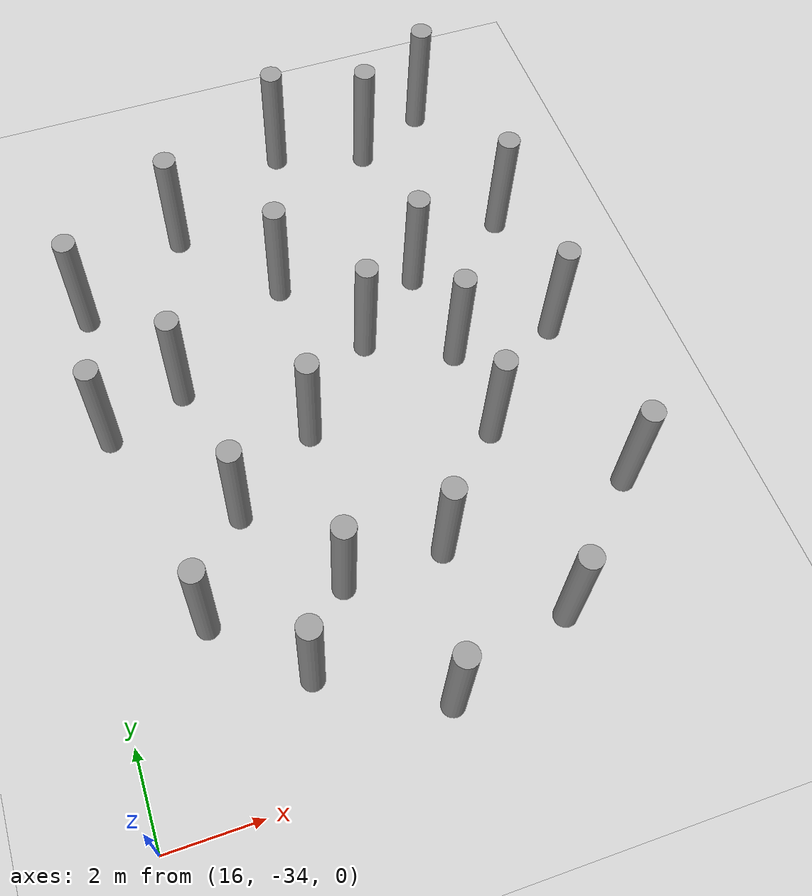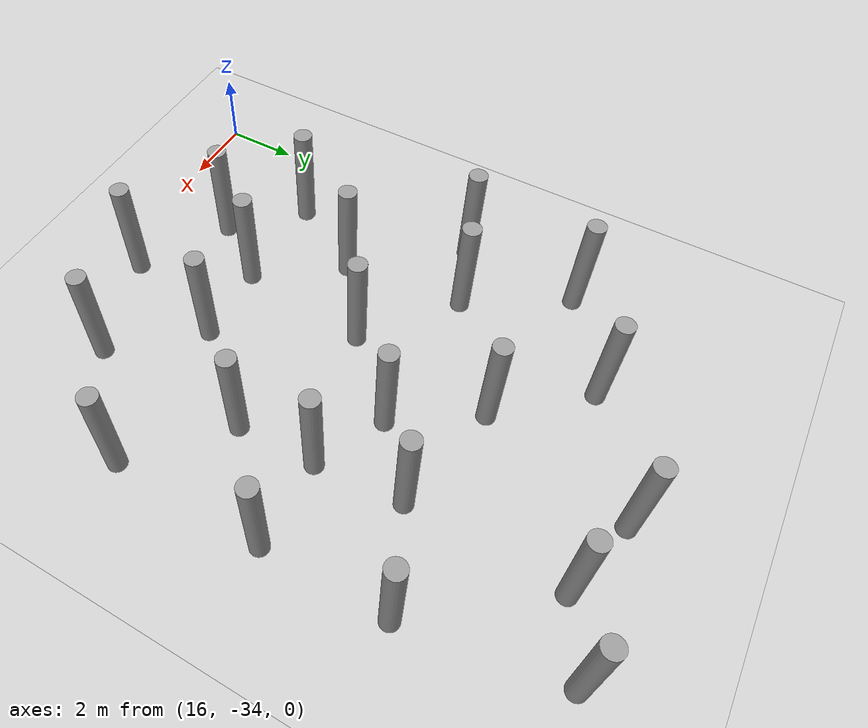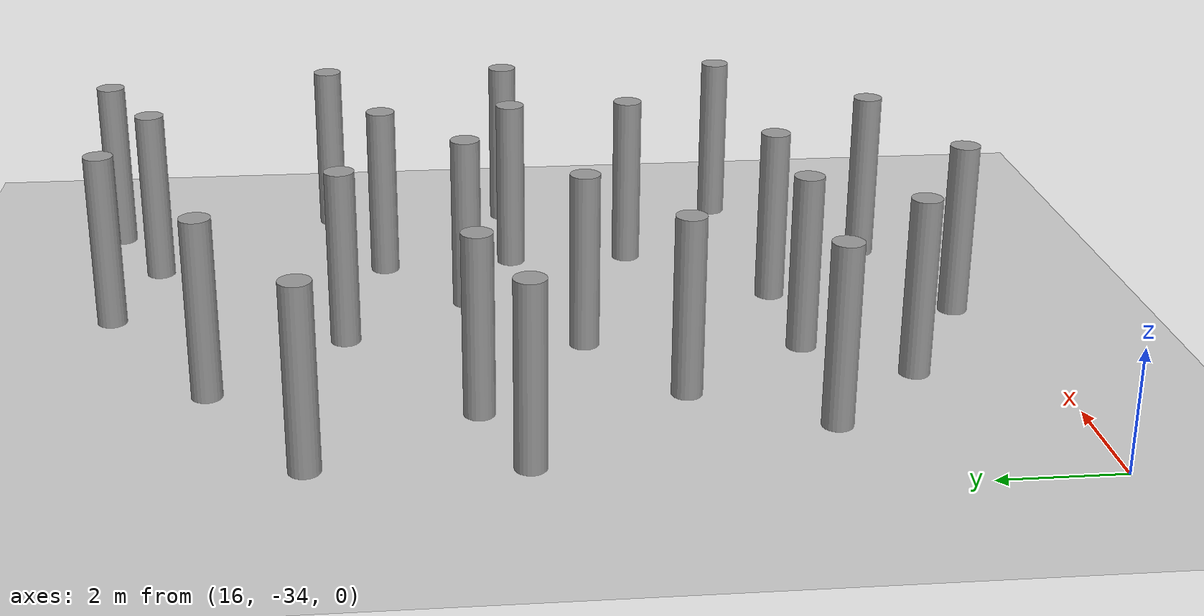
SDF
<sdf version="1.6">
 <world name="default">
  <model name="ground_plane">
   <static>1</static>
   <link name="link">
    <collision name="collision">
     <geometry><plane><normal>0 0 1</normal><size>100 100</size></plane></geometry>
     <surface><friction><ode><mu>100</mu><mu2>50</mu2></ode></friction></surface>
    </collision>
    <visual name="visual">
     <cast_shadows>0</cast_shadows>
     <geometry><plane><normal>0 0 1</normal><size>100 100</size></plane></geometry>
     <material>
      <script><uri>file://media/materials/scripts/gazebo.material</uri><name>Gazebo/Grey</name></script>
     </material>
    </visual>
   </link>
  </model>
  <model name="LjjForest_4">
   <link name="link_0_clone">
    <inertial>
     <mass>1</mass>
     <inertia><ixx>0.145833</ixx><ixy>0</ixy><ixz>0</ixz><iyy>0.145833</iyy><iyz>0</iyz><izz>0.125</izz></inertia>
    </inertial>
    <pose>-2.83119 0.981911 0 0 -0 0</pose>
    <visual name="visual">
     <geometry><cylinder><radius>0.25</radius><length>3</length></cylinder></geometry>
     <material>
      <lighting>1</lighting>
      <script><uri>file://media/materials/scripts/gazebo.material</uri><name>Gazebo/Grey</name></script>
      <shader type="vertex"><normal_map>__default__</normal_map></shader>
      <ambient>0.3 0.3 0.3 1</ambient>
      <diffuse>0.7 0.7 0.7 1</diffuse>
      <specular>0.01 0.01 0.01 1</specular>
      <emissive>0 0 0 1</emissive>
     </material>
    </visual>
    <collision name="collision">
     <geometry><cylinder><radius>0.25</radius><length>3</length></cylinder></geometry>
     <surface>
      <friction>
       <ode><mu>1</mu><mu2>1</mu2><fdir1>0 0 0</fdir1><slip1>0</slip1><slip2>0</slip2></ode>
       <torsional>
        <coefficient>1</coefficient>
        <patch_radius>0</patch_radius>
        <surface_radius>0</surface_radius>
        <use_patch_radius>1</use_patch_radius>
        <ode><slip>0</slip></ode>
       </torsional>
      </friction>
      <bounce><restitution_coefficient>0</restitution_coefficient><threshold>1e+06</threshold></bounce>
      <contact>
       <collide_without_contact>0</collide_without_contact>
       <collide_without_contact_bitmask>1</collide_without_contact_bitmask>
       <collide_bitmask>1</collide_bitmask>
       <ode>
        <soft_cfm>0</soft_cfm>
        <soft_erp>0.2</soft_erp>
        <kp>1e+13</kp>
        <kd>1</kd>
        <max_vel>0.01</max_vel>
        <min_depth>0</min_depth>
       </ode>
       <bullet>
        <split_impulse>1</split_impulse>
        <split_impulse_penetration_threshold>-0.01</split_impulse_penetration_threshold>
        <soft_cfm>0</soft_cfm>
        <soft_erp>0.2</soft_erp>
        <kp>1e+13</kp>
        <kd>1</kd>
       </bullet>
      </contact>
     </surface>
    </collision>
   </link>
   <link name="link_0_clone_0">
    <inertial>
     <mass>1</mass>
     <inertia><ixx>0.145833</ixx><ixy>0</ixy><ixz>0</ixz><iyy>0.145833</iyy><iyz>0</iyz><izz>0.125</izz></inertia>
    </inertial>
    <pose>-0.25253 2.5682 0 0 -0 0</pose>
    <visual name="visual">
     <geometry><cylinder><radius>0.25</radius><length>3</length></cylinder></geometry>
     <material>
      <lighting>1</lighting>
      <script><uri>file://media/materials/scripts/gazebo.material</uri><name>Gazebo/Grey</name></script>
      <shader type="vertex"><normal_map>__default__</normal_map></shader>
      <ambient>0.3 0.3 0.3 1</ambient>
      <diffuse>0.7 0.7 0.7 1</diffuse>
      <specular>0.01 0.01 0.01 1</specular>
      <emissive>0 0 0 1</emissive>
     </material>
    </visual>
    <collision name="collision">
     <geometry><cylinder><radius>0.25</radius><length>3</length></cylinder></geometry>
     <surface>
      <friction>
       <ode><mu>1</mu><mu2>1</mu2><fdir1>0 0 0</fdir1><slip1>0</slip1><slip2>0</slip2></ode>
       <torsional>
        <coefficient>1</coefficient>
        <patch_radius>0</patch_radius>
        <surface_radius>0</surface_radius>
        <use_patch_radius>1</use_patch_radius>
        <ode><slip>0</slip></ode>
       </torsional>
      </friction>
      <bounce><restitution_coefficient>0</restitution_coefficient><threshold>1e+06</threshold></bounce>
      <contact>
       <collide_without_contact>0</collide_without_contact>
       <collide_without_contact_bitmask>1</collide_without_contact_bitmask>
       <collide_bitmask>1</collide_bitmask>
       <ode>
        <soft_cfm>0</soft_cfm>
        <soft_erp>0.2</soft_erp>
        <kp>1e+13</kp>
        <kd>1</kd>
        <max_vel>0.01</max_vel>
        <min_depth>0</min_depth>
       </ode>
       <bullet>
        <split_impulse>1</split_impulse>
        <split_impulse_penetration_threshold>-0.01</split_impulse_penetration_threshold>
        <soft_cfm>0</soft_cfm>
        <soft_erp>0.2</soft_erp>
        <kp>1e+13</kp>
        <kd>1</kd>
       </bullet>
      </contact>
     </surface>
    </collision>
   </link>
   <link name="link_0_clone_1">
    <inertial>
     <mass>1</mass>
     <inertia><ixx>0.145833</ixx><ixy>0</ixy><ixz>0</ixz><iyy>0.145833</iyy><iyz>0</iyz><izz>0.125</izz></inertia>
    </inertial>
    <pose>-1.2394 -1.64814 0 0 -0 0</pose>
    <visual name="visual">
     <geometry><cylinder><radius>0.25</radius><length>3</length></cylinder></geometry>
     <material>
      <lighting>1</lighting>
      <script><uri>file://media/materials/scripts/gazebo.material</uri><name>Gazebo/Grey</name></script>
      <shader type="vertex"><normal_map>__default__</normal_map></shader>
      <ambient>0.3 0.3 0.3 1</ambient>
      <diffuse>0.7 0.7 0.7 1</diffuse>
      <specular>0.01 0.01 0.01 1</specular>
      <emissive>0 0 0 1</emissive>
     </material>
    </visual>
    <collision name="collision">
     <geometry><cylinder><radius>0.25</radius><length>3</length></cylinder></geometry>
     <surface>
      <friction>
       <ode><mu>1</mu><mu2>1</mu2><fdir1>0 0 0</fdir1><slip1>0</slip1><slip2>0</slip2></ode>
       <torsional>
        <coefficient>1</coefficient>
        <patch_radius>0</patch_radius>
        <surface_radius>0</surface_radius>
        <use_patch_radius>1</use_patch_radius>
        <ode><slip>0</slip></ode>
       </torsional>
      </friction>
      <bounce><restitution_coefficient>0</restitution_coefficient><threshold>1e+06</threshold></bounce>
      <contact>
       <collide_without_contact>0</collide_without_contact>
       <collide_without_contact_bitmask>1</collide_without_contact_bitmask>
       <collide_bitmask>1</collide_bitmask>
       <ode>
        <soft_cfm>0</soft_cfm>
        <soft_erp>0.2</soft_erp>
        <kp>1e+13</kp>
        <kd>1</kd>
        <max_vel>0.01</max_vel>
        <min_depth>0</min_depth>
       </ode>
       <bullet>
        <split_impulse>1</split_impulse>
        <split_impulse_penetration_threshold>-0.01</split_impulse_penetration_threshold>
        <soft_cfm>0</soft_cfm>
        <soft_erp>0.2</soft_erp>
        <kp>1e+13</kp>
        <kd>1</kd>
       </bullet>
      </contact>
     </surface>
    </collision>
   </link>
   <link name="link_0_clone_10">
    <inertial>
     <mass>1</mass>
     <inertia><ixx>0.145833</ixx><ixy>0</ixy><ixz>0</ixz><iyy>0.145833</iyy><iyz>0</iyz><izz>0.125</izz></inertia>
    </inertial>
    <pose>4.92442 -4.7051 0 0 -0 0</pose>
    <visual name="visual">
     <geometry><cylinder><radius>0.25</radius><length>3</length></cylinder></geometry>
     <material>
      <lighting>1</lighting>
      <script><uri>file://media/materials/scripts/gazebo.material</uri><name>Gazebo/Grey</name></script>
      <shader type="vertex"><normal_map>__default__</normal_map></shader>
      <ambient>0.3 0.3 0.3 1</ambient>
      <diffuse>0.7 0.7 0.7 1</diffuse>
      <specular>0.01 0.01 0.01 1</specular>
      <emissive>0 0 0 1</emissive>
     </material>
    </visual>
    <collision name="collision">
     <geometry><cylinder><radius>0.25</radius><length>3</length></cylinder></geometry>
     <surface>
      <friction>
       <ode><mu>1</mu><mu2>1</mu2><fdir1>0 0 0</fdir1><slip1>0</slip1><slip2>0</slip2></ode>
       <torsional>
        <coefficient>1</coefficient>
        <patch_radius>0</patch_radius>
        <surface_radius>0</surface_radius>
        <use_patch_radius>1</use_patch_radius>
        <ode><slip>0</slip></ode>
       </torsional>
      </friction>
      <bounce><restitution_coefficient>0</restitution_coefficient><threshold>1e+06</threshold></bounce>
      <contact>
       <collide_without_contact>0</collide_without_contact>
       <collide_without_contact_bitmask>1</collide_without_contact_bitmask>
       <collide_bitmask>1</collide_bitmask>
       <ode>
        <soft_cfm>0</soft_cfm>
        <soft_erp>0.2</soft_erp>
        <kp>1e+13</kp>
        <kd>1</kd>
        <max_vel>0.01</max_vel>
        <min_depth>0</min_depth>
       </ode>
       <bullet>
        <split_impulse>1</split_impulse>
        <split_impulse_penetration_threshold>-0.01</split_impulse_penetration_threshold>
        <soft_cfm>0</soft_cfm>
        <soft_erp>0.2</soft_erp>
        <kp>1e+13</kp>
        <kd>1</kd>
       </bullet>
      </contact>
     </surface>
    </collision>
   </link>
   <link name="link_0_clone_11">
    <inertial>
     <mass>1</mass>
     <inertia><ixx>0.145833</ixx><ixy>0</ixy><ixz>0</ixz><iyy>0.145833</iyy><iyz>0</iyz><izz>0.125</izz></inertia>
    </inertial>
    <pose>2.92414 -7.00263 0 0 -0 0</pose>
    <visual name="visual">
     <geometry><cylinder><radius>0.25</radius><length>3</length></cylinder></geometry>
     <material>
      <lighting>1</lighting>
      <script><uri>file://media/materials/scripts/gazebo.material</uri><name>Gazebo/Grey</name></script>
      <shader type="vertex"><normal_map>__default__</normal_map></shader>
      <ambient>0.3 0.3 0.3 1</ambient>
      <diffuse>0.7 0.7 0.7 1</diffuse>
      <specular>0.01 0.01 0.01 1</specular>
      <emissive>0 0 0 1</emissive>
     </material>
    </visual>
    <collision name="collision">
     <geometry><cylinder><radius>0.25</radius><length>3</length></cylinder></geometry>
     <surface>
      <friction>
       <ode><mu>1</mu><mu2>1</mu2><fdir1>0 0 0</fdir1><slip1>0</slip1><slip2>0</slip2></ode>
       <torsional>
        <coefficient>1</coefficient>
        <patch_radius>0</patch_radius>
        <surface_radius>0</surface_radius>
        <use_patch_radius>1</use_patch_radius>
        <ode><slip>0</slip></ode>
       </torsional>
      </friction>
      <bounce><restitution_coefficient>0</restitution_coefficient><threshold>1e+06</threshold></bounce>
      <contact>
       <collide_without_contact>0</collide_without_contact>
       <collide_without_contact_bitmask>1</collide_without_contact_bitmask>
       <collide_bitmask>1</collide_bitmask>
       <ode>
        <soft_cfm>0</soft_cfm>
        <soft_erp>0.2</soft_erp>
        <kp>1e+13</kp>
        <kd>1</kd>
        <max_vel>0.01</max_vel>
        <min_depth>0</min_depth>
       </ode>
       <bullet>
        <split_impulse>1</split_impulse>
        <split_impulse_penetration_threshold>-0.01</split_impulse_penetration_threshold>
        <soft_cfm>0</soft_cfm>
        <soft_erp>0.2</soft_erp>
        <kp>1e+13</kp>
        <kd>1</kd>
       </bullet>
      </contact>
     </surface>
    </collision>
   </link>
   <link name="link_0_clone_12">
    <inertial>
     <mass>1</mass>
     <inertia><ixx>0.145833</ixx><ixy>0</ixy><ixz>0</ixz><iyy>0.145833</iyy><iyz>0</iyz><izz>0.125</izz></inertia>
    </inertial>
    <pose>4.76112 -9.06376 0 0 -0 0</pose>
    <visual name="visual">
     <geometry><cylinder><radius>0.25</radius><length>3</length></cylinder></geometry>
     <material>
      <lighting>1</lighting>
      <script><uri>file://media/materials/scripts/gazebo.material</uri><name>Gazebo/Grey</name></script>
      <shader type="vertex"><normal_map>__default__</normal_map></shader>
      <ambient>0.3 0.3 0.3 1</ambient>
      <diffuse>0.7 0.7 0.7 1</diffuse>
      <specular>0.01 0.01 0.01 1</specular>
      <emissive>0 0 0 1</emissive>
     </material>
    </visual>
    <collision name="collision">
     <geometry><cylinder><radius>0.25</radius><length>3</length></cylinder></geometry>
     <surface>
      <friction>
       <ode><mu>1</mu><mu2>1</mu2><fdir1>0 0 0</fdir1><slip1>0</slip1><slip2>0</slip2></ode>
       <torsional>
        <coefficient>1</coefficient>
        <patch_radius>0</patch_radius>
        <surface_radius>0</surface_radius>
        <use_patch_radius>1</use_patch_radius>
        <ode><slip>0</slip></ode>
       </torsional>
      </friction>
      <bounce><restitution_coefficient>0</restitution_coefficient><threshold>1e+06</threshold></bounce>
      <contact>
       <collide_without_contact>0</collide_without_contact>
       <collide_without_contact_bitmask>1</collide_without_contact_bitmask>
       <collide_bitmask>1</collide_bitmask>
       <ode>
        <soft_cfm>0</soft_cfm>
        <soft_erp>0.2</soft_erp>
        <kp>1e+13</kp>
        <kd>1</kd>
        <max_vel>0.01</max_vel>
        <min_depth>0</min_depth>
       </ode>
       <bullet>
        <split_impulse>1</split_impulse>
        <split_impulse_penetration_threshold>-0.01</split_impulse_penetration_threshold>
        <soft_cfm>0</soft_cfm>
        <soft_erp>0.2</soft_erp>
        <kp>1e+13</kp>
        <kd>1</kd>
       </bullet>
      </contact>
     </surface>
    </collision>
   </link>
   <link name="link_0_clone_13">
    <inertial>
     <mass>1</mass>
     <inertia><ixx>0.145833</ixx><ixy>0</ixy><ixz>0</ixz><iyy>0.145833</iyy><iyz>0</iyz><izz>0.125</izz></inertia>
    </inertial>
    <pose>0.731055 -7.10049 0 0 -0 0</pose>
    <visual name="visual">
     <geometry><cylinder><radius>0.25</radius><length>3</length></cylinder></geometry>
     <material>
      <lighting>1</lighting>
      <script><uri>file://media/materials/scripts/gazebo.material</uri><name>Gazebo/Grey</name></script>
      <shader type="vertex"><normal_map>__default__</normal_map></shader>
      <ambient>0.3 0.3 0.3 1</ambient>
      <diffuse>0.7 0.7 0.7 1</diffuse>
      <specular>0.01 0.01 0.01 1</specular>
      <emissive>0 0 0 1</emissive>
     </material>
    </visual>
    <collision name="collision">
     <geometry><cylinder><radius>0.25</radius><length>3</length></cylinder></geometry>
     <surface>
      <friction>
       <ode><mu>1</mu><mu2>1</mu2><fdir1>0 0 0</fdir1><slip1>0</slip1><slip2>0</slip2></ode>
       <torsional>
        <coefficient>1</coefficient>
        <patch_radius>0</patch_radius>
        <surface_radius>0</surface_radius>
        <use_patch_radius>1</use_patch_radius>
        <ode><slip>0</slip></ode>
       </torsional>
      </friction>
      <bounce><restitution_coefficient>0</restitution_coefficient><threshold>1e+06</threshold></bounce>
      <contact>
       <collide_without_contact>0</collide_without_contact>
       <collide_without_contact_bitmask>1</collide_without_contact_bitmask>
       <collide_bitmask>1</collide_bitmask>
       <ode>
        <soft_cfm>0</soft_cfm>
        <soft_erp>0.2</soft_erp>
        <kp>1e+13</kp>
        <kd>1</kd>
        <max_vel>0.01</max_vel>
        <min_depth>0</min_depth>
       </ode>
       <bullet>
        <split_impulse>1</split_impulse>
        <split_impulse_penetration_threshold>-0.01</split_impulse_penetration_threshold>
        <soft_cfm>0</soft_cfm>
        <soft_erp>0.2</soft_erp>
        <kp>1e+13</kp>
        <kd>1</kd>
       </bullet>
      </contact>
     </surface>
    </collision>
   </link>
   <link name="link_0_clone_14">
    <inertial>
     <mass>1</mass>
     <inertia><ixx>0.145833</ixx><ixy>0</ixy><ixz>0</ixz><iyy>0.145833</iyy><iyz>0</iyz><izz>0.125</izz></inertia>
    </inertial>
    <pose>-0.840028 -4.93267 0 0 -0 0</pose>
    <visual name="visual">
     <geometry><cylinder><radius>0.25</radius><length>3</length></cylinder></geometry>
     <material>
      <lighting>1</lighting>
      <script><uri>file://media/materials/scripts/gazebo.material</uri><name>Gazebo/Grey</name></script>
      <shader type="vertex"><normal_map>__default__</normal_map></shader>
      <ambient>0.3 0.3 0.3 1</ambient>
      <diffuse>0.7 0.7 0.7 1</diffuse>
      <specular>0.01 0.01 0.01 1</specular>
      <emissive>0 0 0 1</emissive>
     </material>
    </visual>
    <collision name="collision">
     <geometry><cylinder><radius>0.25</radius><length>3</length></cylinder></geometry>
     <surface>
      <friction>
       <ode><mu>1</mu><mu2>1</mu2><fdir1>0 0 0</fdir1><slip1>0</slip1><slip2>0</slip2></ode>
       <torsional>
        <coefficient>1</coefficient>
        <patch_radius>0</patch_radius>
        <surface_radius>0</surface_radius>
        <use_patch_radius>1</use_patch_radius>
        <ode><slip>0</slip></ode>
       </torsional>
      </friction>
      <bounce><restitution_coefficient>0</restitution_coefficient><threshold>1e+06</threshold></bounce>
      <contact>
       <collide_without_contact>0</collide_without_contact>
       <collide_without_contact_bitmask>1</collide_without_contact_bitmask>
       <collide_bitmask>1</collide_bitmask>
       <ode>
        <soft_cfm>0</soft_cfm>
        <soft_erp>0.2</soft_erp>
        <kp>1e+13</kp>
        <kd>1</kd>
        <max_vel>0.01</max_vel>
        <min_depth>0</min_depth>
       </ode>
       <bullet>
        <split_impulse>1</split_impulse>
        <split_impulse_penetration_threshold>-0.01</split_impulse_penetration_threshold>
        <soft_cfm>0</soft_cfm>
        <soft_erp>0.2</soft_erp>
        <kp>1e+13</kp>
        <kd>1</kd>
       </bullet>
      </contact>
     </surface>
    </collision>
   </link>
   <link name="link_0_clone_15">
    <inertial>
     <mass>1</mass>
     <inertia><ixx>0.145833</ixx><ixy>0</ixy><ixz>0</ixz><iyy>0.145833</iyy><iyz>0</iyz><izz>0.125</izz></inertia>
    </inertial>
    <pose>-3.03254 -2.29236 0 0 -0 0</pose>
    <visual name="visual">
     <geometry><cylinder><radius>0.25</radius><length>3</length></cylinder></geometry>
     <material>
      <lighting>1</lighting>
      <script><uri>file://media/materials/scripts/gazebo.material</uri><name>Gazebo/Grey</name></script>
      <shader type="vertex"><normal_map>__default__</normal_map></shader>
      <ambient>0.3 0.3 0.3 1</ambient>
      <diffuse>0.7 0.7 0.7 1</diffuse>
      <specular>0.01 0.01 0.01 1</specular>
      <emissive>0 0 0 1</emissive>
     </material>
    </visual>
    <collision name="collision">
     <geometry><cylinder><radius>0.25</radius><length>3</length></cylinder></geometry>
     <surface>
      <friction>
       <ode><mu>1</mu><mu2>1</mu2><fdir1>0 0 0</fdir1><slip1>0</slip1><slip2>0</slip2></ode>
       <torsional>
        <coefficient>1</coefficient>
        <patch_radius>0</patch_radius>
        <surface_radius>0</surface_radius>
        <use_patch_radius>1</use_patch_radius>
        <ode><slip>0</slip></ode>
       </torsional>
      </friction>
      <bounce><restitution_coefficient>0</restitution_coefficient><threshold>1e+06</threshold></bounce>
      <contact>
       <collide_without_contact>0</collide_without_contact>
       <collide_without_contact_bitmask>1</collide_without_contact_bitmask>
       <collide_bitmask>1</collide_bitmask>
       <ode>
        <soft_cfm>0</soft_cfm>
        <soft_erp>0.2</soft_erp>
        <kp>1e+13</kp>
        <kd>1</kd>
        <max_vel>0.01</max_vel>
        <min_depth>0</min_depth>
       </ode>
       <bullet>
        <split_impulse>1</split_impulse>
        <split_impulse_penetration_threshold>-0.01</split_impulse_penetration_threshold>
        <soft_cfm>0</soft_cfm>
        <soft_erp>0.2</soft_erp>
        <kp>1e+13</kp>
        <kd>1</kd>
       </bullet>
      </contact>
     </surface>
    </collision>
   </link>
   <link name="link_0_clone_18">
    <inertial>
     <mass>1</mass>
     <inertia><ixx>0.145833</ixx><ixy>0</ixy><ixz>0</ixz><iyy>0.145833</iyy><iyz>0</iyz><izz>0.125</izz></inertia>
    </inertial>
    <pose>-2.11118 -7.04502 0 0 -0 0</pose>
    <visual name="visual">
     <geometry><cylinder><radius>0.25</radius><length>3</length></cylinder></geometry>
     <material>
      <lighting>1</lighting>
      <script><uri>file://media/materials/scripts/gazebo.material</uri><name>Gazebo/Grey</name></script>
      <shader type="vertex"><normal_map>__default__</normal_map></shader>
      <ambient>0.3 0.3 0.3 1</ambient>
      <diffuse>0.7 0.7 0.7 1</diffuse>
      <specular>0.01 0.01 0.01 1</specular>
      <emissive>0 0 0 1</emissive>
     </material>
    </visual>
    <collision name="collision">
     <geometry><cylinder><radius>0.25</radius><length>3</length></cylinder></geometry>
     <surface>
      <friction>
       <ode><mu>1</mu><mu2>1</mu2><fdir1>0 0 0</fdir1><slip1>0</slip1><slip2>0</slip2></ode>
       <torsional>
        <coefficient>1</coefficient>
        <patch_radius>0</patch_radius>
        <surface_radius>0</surface_radius>
        <use_patch_radius>1</use_patch_radius>
        <ode><slip>0</slip></ode>
       </torsional>
      </friction>
      <bounce><restitution_coefficient>0</restitution_coefficient><threshold>1e+06</threshold></bounce>
      <contact>
       <collide_without_contact>0</collide_without_contact>
       <collide_without_contact_bitmask>1</collide_without_contact_bitmask>
       <collide_bitmask>1</collide_bitmask>
       <ode>
        <soft_cfm>0</soft_cfm>
        <soft_erp>0.2</soft_erp>
        <kp>1e+13</kp>
        <kd>1</kd>
        <max_vel>0.01</max_vel>
        <min_depth>0</min_depth>
       </ode>
       <bullet>
        <split_impulse>1</split_impulse>
        <split_impulse_penetration_threshold>-0.01</split_impulse_penetration_threshold>
        <soft_cfm>0</soft_cfm>
        <soft_erp>0.2</soft_erp>
        <kp>1e+13</kp>
        <kd>1</kd>
       </bullet>
      </contact>
     </surface>
    </collision>
   </link>
   <link name="link_0_clone_19">
    <inertial>
     <mass>1</mass>
     <inertia><ixx>0.145833</ixx><ixy>0</ixy><ixz>0</ixz><iyy>0.145833</iyy><iyz>0</iyz><izz>0.125</izz></inertia>
    </inertial>
    <pose>-0.4391 -8.69513 0 0 -0 0</pose>
    <visual name="visual">
     <geometry><cylinder><radius>0.25</radius><length>3</length></cylinder></geometry>
     <material>
      <lighting>1</lighting>
      <script><uri>file://media/materials/scripts/gazebo.material</uri><name>Gazebo/Grey</name></script>
      <shader type="vertex"><normal_map>__default__</normal_map></shader>
      <ambient>0.3 0.3 0.3 1</ambient>
      <diffuse>0.7 0.7 0.7 1</diffuse>
      <specular>0.01 0.01 0.01 1</specular>
      <emissive>0 0 0 1</emissive>
     </material>
    </visual>
    <collision name="collision">
     <geometry><cylinder><radius>0.25</radius><length>3</length></cylinder></geometry>
     <surface>
      <friction>
       <ode><mu>1</mu><mu2>1</mu2><fdir1>0 0 0</fdir1><slip1>0</slip1><slip2>0</slip2></ode>
       <torsional>
        <coefficient>1</coefficient>
        <patch_radius>0</patch_radius>
        <surface_radius>0</surface_radius>
        <use_patch_radius>1</use_patch_radius>
        <ode><slip>0</slip></ode>
       </torsional>
      </friction>
      <bounce><restitution_coefficient>0</restitution_coefficient><threshold>1e+06</threshold></bounce>
      <contact>
       <collide_without_contact>0</collide_without_contact>
       <collide_without_contact_bitmask>1</collide_without_contact_bitmask>
       <collide_bitmask>1</collide_bitmask>
       <ode>
        <soft_cfm>0</soft_cfm>
        <soft_erp>0.2</soft_erp>
        <kp>1e+13</kp>
        <kd>1</kd>
        <max_vel>0.01</max_vel>
        <min_depth>0</min_depth>
       </ode>
       <bullet>
        <split_impulse>1</split_impulse>
        <split_impulse_penetration_threshold>-0.01</split_impulse_penetration_threshold>
        <soft_cfm>0</soft_cfm>
        <soft_erp>0.2</soft_erp>
        <kp>1e+13</kp>
        <kd>1</kd>
       </bullet>
      </contact>
     </surface>
    </collision>
   </link>
   <link name="link_0_clone_2">
    <inertial>
     <mass>1</mass>
     <inertia><ixx>0.145833</ixx><ixy>0</ixy><ixz>0</ixz><iyy>0.145833</iyy><iyz>0</iyz><izz>0.125</izz></inertia>
    </inertial>
    <pose>1.64727 0.418921 0 0 -0 0</pose>
    <visual name="visual">
     <geometry><cylinder><radius>0.25</radius><length>3</length></cylinder></geometry>
     <material>
      <lighting>1</lighting>
      <script><uri>file://media/materials/scripts/gazebo.material</uri><name>Gazebo/Grey</name></script>
      <shader type="vertex"><normal_map>__default__</normal_map></shader>
      <ambient>0.3 0.3 0.3 1</ambient>
      <diffuse>0.7 0.7 0.7 1</diffuse>
      <specular>0.01 0.01 0.01 1</specular>
      <emissive>0 0 0 1</emissive>
     </material>
    </visual>
    <collision name="collision">
     <geometry><cylinder><radius>0.25</radius><length>3</length></cylinder></geometry>
     <surface>
      <friction>
       <ode><mu>1</mu><mu2>1</mu2><fdir1>0 0 0</fdir1><slip1>0</slip1><slip2>0</slip2></ode>
       <torsional>
        <coefficient>1</coefficient>
        <patch_radius>0</patch_radius>
        <surface_radius>0</surface_radius>
        <use_patch_radius>1</use_patch_radius>
        <ode><slip>0</slip></ode>
       </torsional>
      </friction>
      <bounce><restitution_coefficient>0</restitution_coefficient><threshold>1e+06</threshold></bounce>
      <contact>
       <collide_without_contact>0</collide_without_contact>
       <collide_without_contact_bitmask>1</collide_without_contact_bitmask>
       <collide_bitmask>1</collide_bitmask>
       <ode>
        <soft_cfm>0</soft_cfm>
        <soft_erp>0.2</soft_erp>
        <kp>1e+13</kp>
        <kd>1</kd>
        <max_vel>0.01</max_vel>
        <min_depth>0</min_depth>
       </ode>
       <bullet>
        <split_impulse>1</split_impulse>
        <split_impulse_penetration_threshold>-0.01</split_impulse_penetration_threshold>
        <soft_cfm>0</soft_cfm>
        <soft_erp>0.2</soft_erp>
        <kp>1e+13</kp>
        <kd>1</kd>
       </bullet>
      </contact>
     </surface>
    </collision>
   </link>
   <link name="link_0_clone_20">
    <inertial>
     <mass>1</mass>
     <inertia><ixx>0.145833</ixx><ixy>0</ixy><ixz>0</ixz><iyy>0.145833</iyy><iyz>0</iyz><izz>0.125</izz></inertia>
    </inertial>
    <pose>1.97365 -10.0303 0 0 -0 0</pose>
    <visual name="visual">
     <geometry><cylinder><radius>0.25</radius><length>3</length></cylinder></geometry>
     <material>
      <lighting>1</lighting>
      <script><uri>file://media/materials/scripts/gazebo.material</uri><name>Gazebo/Grey</name></script>
      <shader type="vertex"><normal_map>__default__</normal_map></shader>
      <ambient>0.3 0.3 0.3 1</ambient>
      <diffuse>0.7 0.7 0.7 1</diffuse>
      <specular>0.01 0.01 0.01 1</specular>
      <emissive>0 0 0 1</emissive>
     </material>
    </visual>
    <collision name="collision">
     <geometry><cylinder><radius>0.25</radius><length>3</length></cylinder></geometry>
     <surface>
      <friction>
       <ode><mu>1</mu><mu2>1</mu2><fdir1>0 0 0</fdir1><slip1>0</slip1><slip2>0</slip2></ode>
       <torsional>
        <coefficient>1</coefficient>
        <patch_radius>0</patch_radius>
        <surface_radius>0</surface_radius>
        <use_patch_radius>1</use_patch_radius>
        <ode><slip>0</slip></ode>
       </torsional>
      </friction>
      <bounce><restitution_coefficient>0</restitution_coefficient><threshold>1e+06</threshold></bounce>
      <contact>
       <collide_without_contact>0</collide_without_contact>
       <collide_without_contact_bitmask>1</collide_without_contact_bitmask>
       <collide_bitmask>1</collide_bitmask>
       <ode>
        <soft_cfm>0</soft_cfm>
        <soft_erp>0.2</soft_erp>
        <kp>1e+13</kp>
        <kd>1</kd>
        <max_vel>0.01</max_vel>
        <min_depth>0</min_depth>
       </ode>
       <bullet>
        <split_impulse>1</split_impulse>
        <split_impulse_penetration_threshold>-0.01</split_impulse_penetration_threshold>
        <soft_cfm>0</soft_cfm>
        <soft_erp>0.2</soft_erp>
        <kp>1e+13</kp>
        <kd>1</kd>
       </bullet>
      </contact>
     </surface>
    </collision>
   </link>
   <link name="link_0_clone_3">
    <inertial>
     <mass>1</mass>
     <inertia><ixx>0.145833</ixx><ixy>0</ixy><ixz>0</ixz><iyy>0.145833</iyy><iyz>0</iyz><izz>0.125</izz></inertia>
    </inertial>
    <pose>2.76214 4.38882 0 0 -0 0</pose>
    <visual name="visual">
     <geometry><cylinder><radius>0.25</radius><length>3</length></cylinder></geometry>
     <material>
      <lighting>1</lighting>
      <script><uri>file://media/materials/scripts/gazebo.material</uri><name>Gazebo/Grey</name></script>
      <shader type="vertex"><normal_map>__default__</normal_map></shader>
      <ambient>0.3 0.3 0.3 1</ambient>
      <diffuse>0.7 0.7 0.7 1</diffuse>
      <specular>0.01 0.01 0.01 1</specular>
      <emissive>0 0 0 1</emissive>
     </material>
    </visual>
    <collision name="collision">
     <geometry><cylinder><radius>0.25</radius><length>3</length></cylinder></geometry>
     <surface>
      <friction>
       <ode><mu>1</mu><mu2>1</mu2><fdir1>0 0 0</fdir1><slip1>0</slip1><slip2>0</slip2></ode>
       <torsional>
        <coefficient>1</coefficient>
        <patch_radius>0</patch_radius>
        <surface_radius>0</surface_radius>
        <use_patch_radius>1</use_patch_radius>
        <ode><slip>0</slip></ode>
       </torsional>
      </friction>
      <bounce><restitution_coefficient>0</restitution_coefficient><threshold>1e+06</threshold></bounce>
      <contact>
       <collide_without_contact>0</collide_without_contact>
       <collide_without_contact_bitmask>1</collide_without_contact_bitmask>
       <collide_bitmask>1</collide_bitmask>
       <ode>
        <soft_cfm>0</soft_cfm>
        <soft_erp>0.2</soft_erp>
        <kp>1e+13</kp>
        <kd>1</kd>
        <max_vel>0.01</max_vel>
        <min_depth>0</min_depth>
       </ode>
       <bullet>
        <split_impulse>1</split_impulse>
        <split_impulse_penetration_threshold>-0.01</split_impulse_penetration_threshold>
        <soft_cfm>0</soft_cfm>
        <soft_erp>0.2</soft_erp>
        <kp>1e+13</kp>
        <kd>1</kd>
       </bullet>
      </contact>
     </surface>
    </collision>
   </link>
   <link name="link_0_clone_31">
    <inertial>
     <mass>1</mass>
     <inertia><ixx>0.145833</ixx><ixy>0</ixy><ixz>0</ixz><iyy>0.145833</iyy><iyz>0</iyz><izz>0.125</izz></inertia>
    </inertial>
    <pose>4.87388 3.77106 0 0 -0 0</pose>
    <visual name="visual">
     <geometry><cylinder><radius>0.25</radius><length>3</length></cylinder></geometry>
     <material>
      <lighting>1</lighting>
      <script><uri>file://media/materials/scripts/gazebo.material</uri><name>Gazebo/Grey</name></script>
      <shader type="vertex"><normal_map>__default__</normal_map></shader>
      <ambient>0.3 0.3 0.3 1</ambient>
      <diffuse>0.7 0.7 0.7 1</diffuse>
      <specular>0.01 0.01 0.01 1</specular>
      <emissive>0 0 0 1</emissive>
     </material>
    </visual>
    <collision name="collision">
     <geometry><cylinder><radius>0.25</radius><length>3</length></cylinder></geometry>
     <surface>
      <friction>
       <ode><mu>1</mu><mu2>1</mu2><fdir1>0 0 0</fdir1><slip1>0</slip1><slip2>0</slip2></ode>
       <torsional>
        <coefficient>1</coefficient>
        <patch_radius>0</patch_radius>
        <surface_radius>0</surface_radius>
        <use_patch_radius>1</use_patch_radius>
        <ode><slip>0</slip></ode>
       </torsional>
      </friction>
      <bounce><restitution_coefficient>0</restitution_coefficient><threshold>1e+06</threshold></bounce>
      <contact>
       <collide_without_contact>0</collide_without_contact>
       <collide_without_contact_bitmask>1</collide_without_contact_bitmask>
       <collide_bitmask>1</collide_bitmask>
       <ode>
        <soft_cfm>0</soft_cfm>
        <soft_erp>0.2</soft_erp>
        <kp>1e+13</kp>
        <kd>1</kd>
        <max_vel>0.01</max_vel>
        <min_depth>0</min_depth>
       </ode>
       <bullet>
        <split_impulse>1</split_impulse>
        <split_impulse_penetration_threshold>-0.01</split_impulse_penetration_threshold>
        <soft_cfm>0</soft_cfm>
        <soft_erp>0.2</soft_erp>
        <kp>1e+13</kp>
        <kd>1</kd>
       </bullet>
      </contact>
     </surface>
    </collision>
   </link>
   <link name="link_0_clone_32">
    <inertial>
     <mass>1</mass>
     <inertia><ixx>0.145833</ixx><ixy>0</ixy><ixz>0</ixz><iyy>0.145833</iyy><iyz>0</iyz><izz>0.125</izz></inertia>
    </inertial>
    <pose>3.04344 -1.68403 0 0 -0 0</pose>
    <visual name="visual">
     <geometry><cylinder><radius>0.25</radius><length>3</length></cylinder></geometry>
     <material>
      <lighting>1</lighting>
      <script><uri>file://media/materials/scripts/gazebo.material</uri><name>Gazebo/Grey</name></script>
      <shader type="vertex"><normal_map>__default__</normal_map></shader>
      <ambient>0.3 0.3 0.3 1</ambient>
      <diffuse>0.7 0.7 0.7 1</diffuse>
      <specular>0.01 0.01 0.01 1</specular>
      <emissive>0 0 0 1</emissive>
     </material>
    </visual>
    <collision name="collision">
     <geometry><cylinder><radius>0.25</radius><length>3</length></cylinder></geometry>
     <surface>
      <friction>
       <ode><mu>1</mu><mu2>1</mu2><fdir1>0 0 0</fdir1><slip1>0</slip1><slip2>0</slip2></ode>
       <torsional>
        <coefficient>1</coefficient>
        <patch_radius>0</patch_radius>
        <surface_radius>0</surface_radius>
        <use_patch_radius>1</use_patch_radius>
        <ode><slip>0</slip></ode>
       </torsional>
      </friction>
      <bounce><restitution_coefficient>0</restitution_coefficient><threshold>1e+06</threshold></bounce>
      <contact>
       <collide_without_contact>0</collide_without_contact>
       <collide_without_contact_bitmask>1</collide_without_contact_bitmask>
       <collide_bitmask>1</collide_bitmask>
       <ode>
        <soft_cfm>0</soft_cfm>
        <soft_erp>0.2</soft_erp>
        <kp>1e+13</kp>
        <kd>1</kd>
        <max_vel>0.01</max_vel>
        <min_depth>0</min_depth>
       </ode>
       <bullet>
        <split_impulse>1</split_impulse>
        <split_impulse_penetration_threshold>-0.01</split_impulse_penetration_threshold>
        <soft_cfm>0</soft_cfm>
        <soft_erp>0.2</soft_erp>
        <kp>1e+13</kp>
        <kd>1</kd>
       </bullet>
      </contact>
     </surface>
    </collision>
   </link>
   <link name="link_0_clone_7">
    <inertial>
     <mass>1</mass>
     <inertia><ixx>0.145833</ixx><ixy>0</ixy><ixz>0</ixz><iyy>0.145833</iyy><iyz>0</iyz><izz>0.125</izz></inertia>
    </inertial>
    <pose>1.14853 -3.52752 0 0 -0 0</pose>
    <visual name="visual">
     <geometry><cylinder><radius>0.25</radius><length>3</length></cylinder></geometry>
     <material>
      <lighting>1</lighting>
      <script><uri>file://media/materials/scripts/gazebo.material</uri><name>Gazebo/Grey</name></script>
      <shader type="vertex"><normal_map>__default__</normal_map></shader>
      <ambient>0.3 0.3 0.3 1</ambient>
      <diffuse>0.7 0.7 0.7 1</diffuse>
      <specular>0.01 0.01 0.01 1</specular>
      <emissive>0 0 0 1</emissive>
     </material>
    </visual>
    <collision name="collision">
     <geometry><cylinder><radius>0.25</radius><length>3</length></cylinder></geometry>
     <surface>
      <friction>
       <ode><mu>1</mu><mu2>1</mu2><fdir1>0 0 0</fdir1><slip1>0</slip1><slip2>0</slip2></ode>
       <torsional>
        <coefficient>1</coefficient>
        <patch_radius>0</patch_radius>
        <surface_radius>0</surface_radius>
        <use_patch_radius>1</use_patch_radius>
        <ode><slip>0</slip></ode>
       </torsional>
      </friction>
      <bounce><restitution_coefficient>0</restitution_coefficient><threshold>1e+06</threshold></bounce>
      <contact>
       <collide_without_contact>0</collide_without_contact>
       <collide_without_contact_bitmask>1</collide_without_contact_bitmask>
       <collide_bitmask>1</collide_bitmask>
       <ode>
        <soft_cfm>0</soft_cfm>
        <soft_erp>0.2</soft_erp>
        <kp>1e+13</kp>
        <kd>1</kd>
        <max_vel>0.01</max_vel>
        <min_depth>0</min_depth>
       </ode>
       <bullet>
        <split_impulse>1</split_impulse>
        <split_impulse_penetration_threshold>-0.01</split_impulse_penetration_threshold>
        <soft_cfm>0</soft_cfm>
        <soft_erp>0.2</soft_erp>
        <kp>1e+13</kp>
        <kd>1</kd>
       </bullet>
      </contact>
     </surface>
    </collision>
   </link>
   <link name="link_0_clone_8">
    <inertial>
     <mass>1</mass>
     <inertia><ixx>0.145833</ixx><ixy>0</ixy><ixz>0</ixz><iyy>0.145833</iyy><iyz>0</iyz><izz>0.125</izz></inertia>
    </inertial>
    <pose>4.72743 -0.273206 0 0 -0 0</pose>
    <visual name="visual">
     <geometry><cylinder><radius>0.25</radius><length>3</length></cylinder></geometry>
     <material>
      <lighting>1</lighting>
      <script><uri>file://media/materials/scripts/gazebo.material</uri><name>Gazebo/Grey</name></script>
      <shader type="vertex"><normal_map>__default__</normal_map></shader>
      <ambient>0.3 0.3 0.3 1</ambient>
      <diffuse>0.7 0.7 0.7 1</diffuse>
      <specular>0.01 0.01 0.01 1</specular>
      <emissive>0 0 0 1</emissive>
     </material>
    </visual>
    <collision name="collision">
     <geometry><cylinder><radius>0.25</radius><length>3</length></cylinder></geometry>
     <surface>
      <friction>
       <ode><mu>1</mu><mu2>1</mu2><fdir1>0 0 0</fdir1><slip1>0</slip1><slip2>0</slip2></ode>
       <torsional>
        <coefficient>1</coefficient>
        <patch_radius>0</patch_radius>
        <surface_radius>0</surface_radius>
        <use_patch_radius>1</use_patch_radius>
        <ode><slip>0</slip></ode>
       </torsional>
      </friction>
      <bounce><restitution_coefficient>0</restitution_coefficient><threshold>1e+06</threshold></bounce>
      <contact>
       <collide_without_contact>0</collide_without_contact>
       <collide_without_contact_bitmask>1</collide_without_contact_bitmask>
       <collide_bitmask>1</collide_bitmask>
       <ode>
        <soft_cfm>0</soft_cfm>
        <soft_erp>0.2</soft_erp>
        <kp>1e+13</kp>
        <kd>1</kd>
        <max_vel>0.01</max_vel>
        <min_depth>0</min_depth>
       </ode>
       <bullet>
        <split_impulse>1</split_impulse>
        <split_impulse_penetration_threshold>-0.01</split_impulse_penetration_threshold>
        <soft_cfm>0</soft_cfm>
        <soft_erp>0.2</soft_erp>
        <kp>1e+13</kp>
        <kd>1</kd>
       </bullet>
      </contact>
     </surface>
    </collision>
   </link>
   <link name="link_0_clone_9">
    <inertial>
     <mass>1</mass>
     <inertia><ixx>0.145833</ixx><ixy>0</ixy><ixz>0</ixz><iyy>0.145833</iyy><iyz>0</iyz><izz>0.125</izz></inertia>
    </inertial>
    <pose>4.89769 -2.58143 0 0 -0 0</pose>
    <visual name="visual">
     <geometry><cylinder><radius>0.25</radius><length>3</length></cylinder></geometry>
     <material>
      <lighting>1</lighting>
      <script><uri>file://media/materials/scripts/gazebo.material</uri><name>Gazebo/Grey</name></script>
      <shader type="vertex"><normal_map>__default__</normal_map></shader>
      <ambient>0.3 0.3 0.3 1</ambient>
      <diffuse>0.7 0.7 0.7 1</diffuse>
      <specular>0.01 0.01 0.01 1</specular>
      <emissive>0 0 0 1</emissive>
     </material>
    </visual>
    <collision name="collision">
     <geometry><cylinder><radius>0.25</radius><length>3</length></cylinder></geometry>
     <surface>
      <friction>
       <ode><mu>1</mu><mu2>1</mu2><fdir1>0 0 0</fdir1><slip1>0</slip1><slip2>0</slip2></ode>
       <torsional>
        <coefficient>1</coefficient>
        <patch_radius>0</patch_radius>
        <surface_radius>0</surface_radius>
        <use_patch_radius>1</use_patch_radius>
        <ode><slip>0</slip></ode>
       </torsional>
      </friction>
      <bounce><restitution_coefficient>0</restitution_coefficient><threshold>1e+06</threshold></bounce>
      <contact>
       <collide_without_contact>0</collide_without_contact>
       <collide_without_contact_bitmask>1</collide_without_contact_bitmask>
       <collide_bitmask>1</collide_bitmask>
       <ode>
        <soft_cfm>0</soft_cfm>
        <soft_erp>0.2</soft_erp>
        <kp>1e+13</kp>
        <kd>1</kd>
        <max_vel>0.01</max_vel>
        <min_depth>0</min_depth>
       </ode>
       <bullet>
        <split_impulse>1</split_impulse>
        <split_impulse_penetration_threshold>-0.01</split_impulse_penetration_threshold>
        <soft_cfm>0</soft_cfm>
        <soft_erp>0.2</soft_erp>
        <kp>1e+13</kp>
        <kd>1</kd>
       </bullet>
      </contact>
     </surface>
    </collision>
   </link>
   <static>0</static>
   <pose>20.0127 -23.0998 1.49999 0 -0 0.002232</pose>
  </model>
  <model name="LjjForest_7">
   <link name="link_0">
    <inertial>
     <mass>1</mass>
     <inertia><ixx>0.145833</ixx><ixy>0</ixy><ixz>0</ixz><iyy>0.145833</iyy><iyz>0</iyz><izz>0.125</izz></inertia>
    </inertial>
    <pose>-5.02717 0.116957 0 0 -0 0</pose>
    <visual name="visual">
     <geometry><cylinder><radius>0.25</radius><length>3</length></cylinder></geometry>
     <material>
      <lighting>1</lighting>
      <script><uri>file://media/materials/scripts/gazebo.material</uri><name>Gazebo/Grey</name></script>
      <shader type="vertex"><normal_map>__default__</normal_map></shader>
      <ambient>0.3 0.3 0.3 1</ambient>
      <diffuse>0.7 0.7 0.7 1</diffuse>
      <specular>0.01 0.01 0.01 1</specular>
      <emissive>0 0 0 1</emissive>
     </material>
    </visual>
    <collision name="collision">
     <geometry><cylinder><radius>0.25</radius><length>3</length></cylinder></geometry>
     <surface>
      <friction>
       <ode><mu>1</mu><mu2>1</mu2><fdir1>0 0 0</fdir1><slip1>0</slip1><slip2>0</slip2></ode>
       <torsional>
        <coefficient>1</coefficient>
        <patch_radius>0</patch_radius>
        <surface_radius>0</surface_radius>
        <use_patch_radius>1</use_patch_radius>
        <ode><slip>0</slip></ode>
       </torsional>
      </friction>
      <bounce><restitution_coefficient>0</restitution_coefficient><threshold>1e+06</threshold></bounce>
      <contact>
       <collide_without_contact>0</collide_without_contact>
       <collide_without_contact_bitmask>1</collide_without_contact_bitmask>
       <collide_bitmask>1</collide_bitmask>
       <ode>
        <soft_cfm>0</soft_cfm>
        <soft_erp>0.2</soft_erp>
        <kp>1e+13</kp>
        <kd>1</kd>
        <max_vel>0.01</max_vel>
        <min_depth>0</min_depth>
       </ode>
       <bullet>
        <split_impulse>1</split_impulse>
        <split_impulse_penetration_threshold>-0.01</split_impulse_penetration_threshold>
        <soft_cfm>0</soft_cfm>
        <soft_erp>0.2</soft_erp>
        <kp>1e+13</kp>
        <kd>1</kd>
       </bullet>
      </contact>
     </surface>
    </collision>
   </link>
   <link name="link_0_clone_16">
    <inertial>
     <mass>1</mass>
     <inertia><ixx>0.145833</ixx><ixy>0</ixy><ixz>0</ixz><iyy>0.145833</iyy><iyz>0</iyz><izz>0.125</izz></inertia>
    </inertial>
    <pose>-5.04025 -3.1815 0 0 -0 0</pose>
    <visual name="visual">
     <geometry><cylinder><radius>0.25</radius><length>3</length></cylinder></geometry>
     <material>
      <lighting>1</lighting>
      <script><uri>file://media/materials/scripts/gazebo.material</uri><name>Gazebo/Grey</name></script>
      <shader type="vertex"><normal_map>__default__</normal_map></shader>
      <ambient>0.3 0.3 0.3 1</ambient>
      <diffuse>0.7 0.7 0.7 1</diffuse>
      <specular>0.01 0.01 0.01 1</specular>
      <emissive>0 0 0 1</emissive>
     </material>
    </visual>
    <collision name="collision">
     <geometry><cylinder><radius>0.25</radius><length>3</length></cylinder></geometry>
     <surface>
      <friction>
       <ode><mu>1</mu><mu2>1</mu2><fdir1>0 0 0</fdir1><slip1>0</slip1><slip2>0</slip2></ode>
       <torsional>
        <coefficient>1</coefficient>
        <patch_radius>0</patch_radius>
        <surface_radius>0</surface_radius>
        <use_patch_radius>1</use_patch_radius>
        <ode><slip>0</slip></ode>
       </torsional>
      </friction>
      <bounce><restitution_coefficient>0</restitution_coefficient><threshold>1e+06</threshold></bounce>
      <contact>
       <collide_without_contact>0</collide_without_contact>
       <collide_without_contact_bitmask>1</collide_without_contact_bitmask>
       <collide_bitmask>1</collide_bitmask>
       <ode>
        <soft_cfm>0</soft_cfm>
        <soft_erp>0.2</soft_erp>
        <kp>1e+13</kp>
        <kd>1</kd>
        <max_vel>0.01</max_vel>
        <min_depth>0</min_depth>
       </ode>
       <bullet>
        <split_impulse>1</split_impulse>
        <split_impulse_penetration_threshold>-0.01</split_impulse_penetration_threshold>
        <soft_cfm>0</soft_cfm>
        <soft_erp>0.2</soft_erp>
        <kp>1e+13</kp>
        <kd>1</kd>
       </bullet>
      </contact>
     </surface>
    </collision>
   </link>
   <link name="link_0_clone_22">
    <inertial>
     <mass>1</mass>
     <inertia><ixx>0.145833</ixx><ixy>0</ixy><ixz>0</ixz><iyy>0.145833</iyy><iyz>0</iyz><izz>0.125</izz></inertia>
    </inertial>
    <pose>-5.1094 -7.26741 0 0 -0 0</pose>
    <visual name="visual">
     <geometry><cylinder><radius>0.25</radius><length>3</length></cylinder></geometry>
     <material>
      <lighting>1</lighting>
      <script><uri>file://media/materials/scripts/gazebo.material</uri><name>Gazebo/Grey</name></script>
      <shader type="vertex"><normal_map>__default__</normal_map></shader>
      <ambient>0.3 0.3 0.3 1</ambient>
      <diffuse>0.7 0.7 0.7 1</diffuse>
      <specular>0.01 0.01 0.01 1</specular>
      <emissive>0 0 0 1</emissive>
     </material>
    </visual>
    <collision name="collision">
     <geometry><cylinder><radius>0.25</radius><length>3</length></cylinder></geometry>
     <surface>
      <friction>
       <ode><mu>1</mu><mu2>1</mu2><fdir1>0 0 0</fdir1><slip1>0</slip1><slip2>0</slip2></ode>
       <torsional>
        <coefficient>1</coefficient>
        <patch_radius>0</patch_radius>
        <surface_radius>0</surface_radius>
        <use_patch_radius>1</use_patch_radius>
        <ode><slip>0</slip></ode>
       </torsional>
      </friction>
      <bounce><restitution_coefficient>0</restitution_coefficient><threshold>1e+06</threshold></bounce>
      <contact>
       <collide_without_contact>0</collide_without_contact>
       <collide_without_contact_bitmask>1</collide_without_contact_bitmask>
       <collide_bitmask>1</collide_bitmask>
       <ode>
        <soft_cfm>0</soft_cfm>
        <soft_erp>0.2</soft_erp>
        <kp>1e+13</kp>
        <kd>1</kd>
        <max_vel>0.01</max_vel>
        <min_depth>0</min_depth>
       </ode>
       <bullet>
        <split_impulse>1</split_impulse>
        <split_impulse_penetration_threshold>-0.01</split_impulse_penetration_threshold>
        <soft_cfm>0</soft_cfm>
        <soft_erp>0.2</soft_erp>
        <kp>1e+13</kp>
        <kd>1</kd>
       </bullet>
      </contact>
     </surface>
    </collision>
   </link>
   <link name="link_0_clone_23">
    <inertial>
     <mass>1</mass>
     <inertia><ixx>0.145833</ixx><ixy>0</ixy><ixz>0</ixz><iyy>0.145833</iyy><iyz>0</iyz><izz>0.125</izz></inertia>
    </inertial>
    <pose>-5.66615 4.05911 0 0 -0 0</pose>
    <visual name="visual">
     <geometry><cylinder><radius>0.25</radius><length>3</length></cylinder></geometry>
     <material>
      <lighting>1</lighting>
      <script><uri>file://media/materials/scripts/gazebo.material</uri><name>Gazebo/Grey</name></script>
      <shader type="vertex"><normal_map>__default__</normal_map></shader>
      <ambient>0.3 0.3 0.3 1</ambient>
      <diffuse>0.7 0.7 0.7 1</diffuse>
      <specular>0.01 0.01 0.01 1</specular>
      <emissive>0 0 0 1</emissive>
     </material>
    </visual>
    <collision name="collision">
     <geometry><cylinder><radius>0.25</radius><length>3</length></cylinder></geometry>
     <surface>
      <friction>
       <ode><mu>1</mu><mu2>1</mu2><fdir1>0 0 0</fdir1><slip1>0</slip1><slip2>0</slip2></ode>
       <torsional>
        <coefficient>1</coefficient>
        <patch_radius>0</patch_radius>
        <surface_radius>0</surface_radius>
        <use_patch_radius>1</use_patch_radius>
        <ode><slip>0</slip></ode>
       </torsional>
      </friction>
      <bounce><restitution_coefficient>0</restitution_coefficient><threshold>1e+06</threshold></bounce>
      <contact>
       <collide_without_contact>0</collide_without_contact>
       <collide_without_contact_bitmask>1</collide_without_contact_bitmask>
       <collide_bitmask>1</collide_bitmask>
       <ode>
        <soft_cfm>0</soft_cfm>
        <soft_erp>0.2</soft_erp>
        <kp>1e+13</kp>
        <kd>1</kd>
        <max_vel>0.01</max_vel>
        <min_depth>0</min_depth>
       </ode>
       <bullet>
        <split_impulse>1</split_impulse>
        <split_impulse_penetration_threshold>-0.01</split_impulse_penetration_threshold>
        <soft_cfm>0</soft_cfm>
        <soft_erp>0.2</soft_erp>
        <kp>1e+13</kp>
        <kd>1</kd>
       </bullet>
      </contact>
     </surface>
    </collision>
   </link>
   <static>0</static>
   <pose>32.2941 -22.489 1.5 0 -0 0.002156</pose>
  </model>
 </world>
</sdf>
